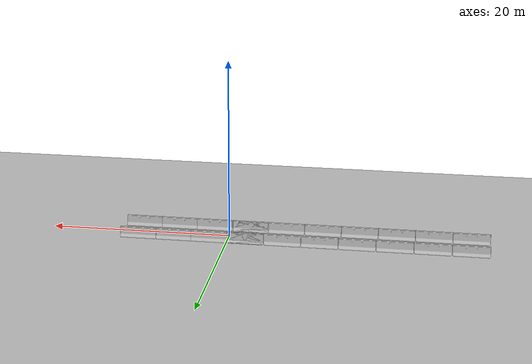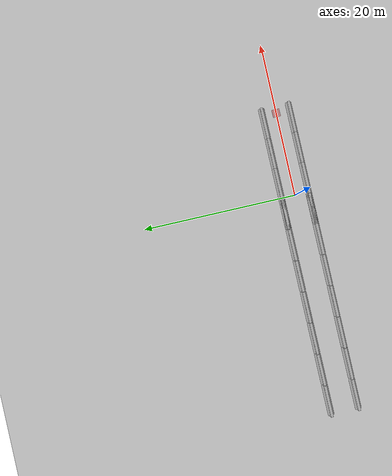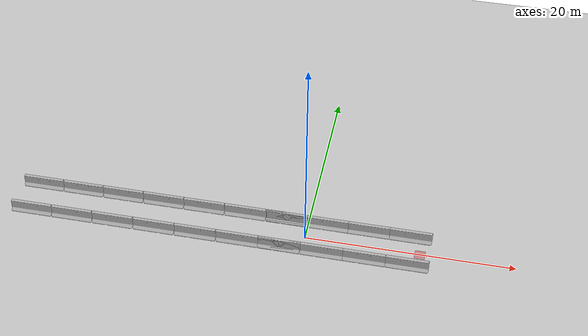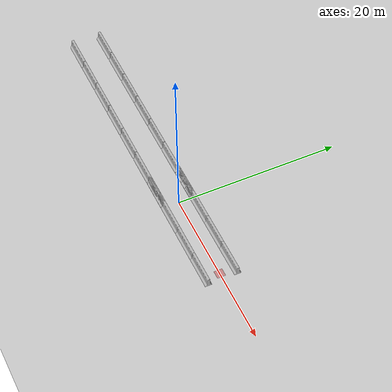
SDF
<sdf version="1.4">
 <world name="default">
  <include><uri>model://sun</uri></include>
  <include><uri>model://ground_plane</uri></include>
  <model name="goal">
   <static>1</static>
   <pose>11 0 0 0 -0 0</pose>
   <link name="link">
    <visual name="visual">
     <geometry><box><size>1 1 0.001</size></box></geometry>
     <transparency>0.6</transparency>
     <material>
      <script><name>Gazebo/Red</name><uri>file://media/materials/scripts/gazebo.material</uri></script>
     </material>
    </visual>
   </link>
  </model>
  <model name="jersey_barrier">
   <static>1</static>
   <link name="link">
    <visual name="visual">
     <geometry>
      <mesh><uri>model://jersey_barrier/meshes/jersey_barrier.dae</uri><scale>1 1 1</scale></mesh>
     </geometry>
    </visual>
    <collision name="upright">
     <pose>0 0 0.5715 0 -0 0</pose>
     <geometry><box><size>4.06542 0.3063 1.143</size></box></geometry>
    </collision>
    <collision name="base">
     <pose>0 0 0.032258 0 -0 0</pose>
     <geometry><box><size>4.06542 0.8107 0.064516</size></box></geometry>
    </collision>
    <collision name="base2">
     <pose>0 0 0.1 0 -0 0</pose>
     <geometry><box><size>4.06542 0.65 0.1</size></box></geometry>
    </collision>
    <collision name="base3">
     <pose>0 0 0.2 0 -0 0</pose>
     <geometry><box><size>4.06542 0.5 0.1</size></box></geometry>
    </collision>
    <collision name="left-angle">
     <pose>0 -0.224 0.2401 0.9 -0 0</pose>
     <geometry><box><size>4.06542 0.5 0.064516</size></box></geometry>
    </collision>
    <collision name="right-angle">
     <pose>0 0.224 0.2401 -0.9 0 0</pose>
     <geometry><box><size>4.06542 0.5 0.064516</size></box></geometry>
    </collision>
   </link>
   <pose>1.9321 -1.8 0 0 -0 0</pose>
  </model>
  <model name="jersey_barrier_0">
   <static>1</static>
   <link name="link">
    <visual name="visual">
     <geometry>
      <mesh><uri>model://jersey_barrier/meshes/jersey_barrier.dae</uri><scale>1 1 1</scale></mesh>
     </geometry>
    </visual>
    <collision name="upright">
     <pose>0 0 0.5715 0 -0 0</pose>
     <geometry><box><size>4.06542 0.3063 1.143</size></box></geometry>
    </collision>
    <collision name="base">
     <pose>0 0 0.032258 0 -0 0</pose>
     <geometry><box><size>4.06542 0.8107 0.064516</size></box></geometry>
    </collision>
    <collision name="base2">
     <pose>0 0 0.1 0 -0 0</pose>
     <geometry><box><size>4.06542 0.65 0.1</size></box></geometry>
    </collision>
    <collision name="base3">
     <pose>0 0 0.2 0 -0 0</pose>
     <geometry><box><size>4.06542 0.5 0.1</size></box></geometry>
    </collision>
    <collision name="left-angle">
     <pose>0 -0.224 0.2401 0.9 -0 0</pose>
     <geometry><box><size>4.06542 0.5 0.064516</size></box></geometry>
    </collision>
    <collision name="right-angle">
     <pose>0 0.224 0.2401 -0.9 0 0</pose>
     <geometry><box><size>4.06542 0.5 0.064516</size></box></geometry>
    </collision>
   </link>
   <pose>-2.1672 -1.8 0 0 -0 0</pose>
  </model>
  <model name="jersey_barrier_1">
   <static>1</static>
   <link name="link">
    <visual name="visual">
     <geometry>
      <mesh><uri>model://jersey_barrier/meshes/jersey_barrier.dae</uri><scale>1 1 1</scale></mesh>
     </geometry>
    </visual>
    <collision name="upright">
     <pose>0 0 0.5715 0 -0 0</pose>
     <geometry><box><size>4.06542 0.3063 1.143</size></box></geometry>
    </collision>
    <collision name="base">
     <pose>0 0 0.032258 0 -0 0</pose>
     <geometry><box><size>4.06542 0.8107 0.064516</size></box></geometry>
    </collision>
    <collision name="base2">
     <pose>0 0 0.1 0 -0 0</pose>
     <geometry><box><size>4.06542 0.65 0.1</size></box></geometry>
    </collision>
    <collision name="base3">
     <pose>0 0 0.2 0 -0 0</pose>
     <geometry><box><size>4.06542 0.5 0.1</size></box></geometry>
    </collision>
    <collision name="left-angle">
     <pose>0 -0.224 0.2401 0.9 -0 0</pose>
     <geometry><box><size>4.06542 0.5 0.064516</size></box></geometry>
    </collision>
    <collision name="right-angle">
     <pose>0 0.224 0.2401 -0.9 0 0</pose>
     <geometry><box><size>4.06542 0.5 0.064516</size></box></geometry>
    </collision>
   </link>
   <pose>5.9507 -1.8 0 0 -0 0</pose>
  </model>
  <model name="jersey_barrier_2">
   <static>1</static>
   <link name="link">
    <visual name="visual">
     <geometry>
      <mesh><uri>model://jersey_barrier/meshes/jersey_barrier.dae</uri><scale>1 1 1</scale></mesh>
     </geometry>
    </visual>
    <collision name="upright">
     <pose>0 0 0.5715 0 -0 0</pose>
     <geometry><box><size>4.06542 0.3063 1.143</size></box></geometry>
    </collision>
    <collision name="base">
     <pose>0 0 0.032258 0 -0 0</pose>
     <geometry><box><size>4.06542 0.8107 0.064516</size></box></geometry>
    </collision>
    <collision name="base2">
     <pose>0 0 0.1 0 -0 0</pose>
     <geometry><box><size>4.06542 0.65 0.1</size></box></geometry>
    </collision>
    <collision name="base3">
     <pose>0 0 0.2 0 -0 0</pose>
     <geometry><box><size>4.06542 0.5 0.1</size></box></geometry>
    </collision>
    <collision name="left-angle">
     <pose>0 -0.224 0.2401 0.9 -0 0</pose>
     <geometry><box><size>4.06542 0.5 0.064516</size></box></geometry>
    </collision>
    <collision name="right-angle">
     <pose>0 0.224 0.2401 -0.9 0 0</pose>
     <geometry><box><size>4.06542 0.5 0.064516</size></box></geometry>
    </collision>
   </link>
   <pose>9.98487 -1.8 0 0 -0 0</pose>
  </model>
  <model name="jersey_barrier_3">
   <static>1</static>
   <link name="link">
    <visual name="visual">
     <geometry>
      <mesh><uri>model://jersey_barrier/meshes/jersey_barrier.dae</uri><scale>1 1 1</scale></mesh>
     </geometry>
    </visual>
    <collision name="upright">
     <pose>0 0 0.5715 0 -0 0</pose>
     <geometry><box><size>4.06542 0.3063 1.143</size></box></geometry>
    </collision>
    <collision name="base">
     <pose>0 0 0.032258 0 -0 0</pose>
     <geometry><box><size>4.06542 0.8107 0.064516</size></box></geometry>
    </collision>
    <collision name="base2">
     <pose>0 0 0.1 0 -0 0</pose>
     <geometry><box><size>4.06542 0.65 0.1</size></box></geometry>
    </collision>
    <collision name="base3">
     <pose>0 0 0.2 0 -0 0</pose>
     <geometry><box><size>4.06542 0.5 0.1</size></box></geometry>
    </collision>
    <collision name="left-angle">
     <pose>0 -0.224 0.2401 0.9 -0 0</pose>
     <geometry><box><size>4.06542 0.5 0.064516</size></box></geometry>
    </collision>
    <collision name="right-angle">
     <pose>0 0.224 0.2401 -0.9 0 0</pose>
     <geometry><box><size>4.06542 0.5 0.064516</size></box></geometry>
    </collision>
   </link>
   <pose>1.95924 1.8 0 0 -0 0</pose>
  </model>
  <model name="jersey_barrier_4">
   <static>1</static>
   <link name="link">
    <visual name="visual">
     <geometry>
      <mesh><uri>model://jersey_barrier/meshes/jersey_barrier.dae</uri><scale>1 1 1</scale></mesh>
     </geometry>
    </visual>
    <collision name="upright">
     <pose>0 0 0.5715 0 -0 0</pose>
     <geometry><box><size>4.06542 0.3063 1.143</size></box></geometry>
    </collision>
    <collision name="base">
     <pose>0 0 0.032258 0 -0 0</pose>
     <geometry><box><size>4.06542 0.8107 0.064516</size></box></geometry>
    </collision>
    <collision name="base2">
     <pose>0 0 0.1 0 -0 0</pose>
     <geometry><box><size>4.06542 0.65 0.1</size></box></geometry>
    </collision>
    <collision name="base3">
     <pose>0 0 0.2 0 -0 0</pose>
     <geometry><box><size>4.06542 0.5 0.1</size></box></geometry>
    </collision>
    <collision name="left-angle">
     <pose>0 -0.224 0.2401 0.9 -0 0</pose>
     <geometry><box><size>4.06542 0.5 0.064516</size></box></geometry>
    </collision>
    <collision name="right-angle">
     <pose>0 0.224 0.2401 -0.9 0 0</pose>
     <geometry><box><size>4.06542 0.5 0.064516</size></box></geometry>
    </collision>
   </link>
   <pose>-2.04077 1.8 0 0 -0 0</pose>
  </model>
  <model name="jersey_barrier_5">
   <static>1</static>
   <link name="link">
    <visual name="visual">
     <geometry>
      <mesh><uri>model://jersey_barrier/meshes/jersey_barrier.dae</uri><scale>1 1 1</scale></mesh>
     </geometry>
    </visual>
    <collision name="upright">
     <pose>0 0 0.5715 0 -0 0</pose>
     <geometry><box><size>4.06542 0.3063 1.143</size></box></geometry>
    </collision>
    <collision name="base">
     <pose>0 0 0.032258 0 -0 0</pose>
     <geometry><box><size>4.06542 0.8107 0.064516</size></box></geometry>
    </collision>
    <collision name="base2">
     <pose>0 0 0.1 0 -0 0</pose>
     <geometry><box><size>4.06542 0.65 0.1</size></box></geometry>
    </collision>
    <collision name="base3">
     <pose>0 0 0.2 0 -0 0</pose>
     <geometry><box><size>4.06542 0.5 0.1</size></box></geometry>
    </collision>
    <collision name="left-angle">
     <pose>0 -0.224 0.2401 0.9 -0 0</pose>
     <geometry><box><size>4.06542 0.5 0.064516</size></box></geometry>
    </collision>
    <collision name="right-angle">
     <pose>0 0.224 0.2401 -0.9 0 0</pose>
     <geometry><box><size>4.06542 0.5 0.064516</size></box></geometry>
    </collision>
   </link>
   <pose>5.89605 1.8 0 0 -0 0</pose>
  </model>
  <model name="jersey_barrier_6">
   <static>1</static>
   <link name="link">
    <visual name="visual">
     <geometry>
      <mesh><uri>model://jersey_barrier/meshes/jersey_barrier.dae</uri><scale>1 1 1</scale></mesh>
     </geometry>
    </visual>
    <collision name="upright">
     <pose>0 0 0.5715 0 -0 0</pose>
     <geometry><box><size>4.06542 0.3063 1.143</size></box></geometry>
    </collision>
    <collision name="base">
     <pose>0 0 0.032258 0 -0 0</pose>
     <geometry><box><size>4.06542 0.8107 0.064516</size></box></geometry>
    </collision>
    <collision name="base2">
     <pose>0 0 0.1 0 -0 0</pose>
     <geometry><box><size>4.06542 0.65 0.1</size></box></geometry>
    </collision>
    <collision name="base3">
     <pose>0 0 0.2 0 -0 0</pose>
     <geometry><box><size>4.06542 0.5 0.1</size></box></geometry>
    </collision>
    <collision name="left-angle">
     <pose>0 -0.224 0.2401 0.9 -0 0</pose>
     <geometry><box><size>4.06542 0.5 0.064516</size></box></geometry>
    </collision>
    <collision name="right-angle">
     <pose>0 0.224 0.2401 -0.9 0 0</pose>
     <geometry><box><size>4.06542 0.5 0.064516</size></box></geometry>
    </collision>
   </link>
   <pose>9.91959 1.8 0 0 -0 0</pose>
  </model>
  <model name="jersey_barrier_7">
   <static>1</static>
   <link name="link">
    <visual name="visual">
     <geometry>
      <mesh><uri>model://jersey_barrier/meshes/jersey_barrier.dae</uri><scale>1 1 1</scale></mesh>
     </geometry>
    </visual>
    <collision name="upright">
     <pose>0 0 0.5715 0 -0 0</pose>
     <geometry><box><size>4.06542 0.3063 1.143</size></box></geometry>
    </collision>
    <collision name="base">
     <pose>0 0 0.032258 0 -0 0</pose>
     <geometry><box><size>4.06542 0.8107 0.064516</size></box></geometry>
    </collision>
    <collision name="base2">
     <pose>0 0 0.1 0 -0 0</pose>
     <geometry><box><size>4.06542 0.65 0.1</size></box></geometry>
    </collision>
    <collision name="base3">
     <pose>0 0 0.2 0 -0 0</pose>
     <geometry><box><size>4.06542 0.5 0.1</size></box></geometry>
    </collision>
    <collision name="left-angle">
     <pose>0 -0.224 0.2401 0.9 -0 0</pose>
     <geometry><box><size>4.06542 0.5 0.064516</size></box></geometry>
    </collision>
    <collision name="right-angle">
     <pose>0 0.224 0.2401 -0.9 0 0</pose>
     <geometry><box><size>4.06542 0.5 0.064516</size></box></geometry>
    </collision>
   </link>
   <pose>-2.1 -1.8 0 0 -0 0</pose>
  </model>
  <model name="jersey_barrier_8">
   <static>1</static>
   <link name="link">
    <visual name="visual">
     <geometry>
      <mesh><uri>model://jersey_barrier/meshes/jersey_barrier.dae</uri><scale>1 1 1</scale></mesh>
     </geometry>
    </visual>
    <collision name="upright">
     <pose>0 0 0.5715 0 -0 0</pose>
     <geometry><box><size>4.06542 0.3063 1.143</size></box></geometry>
    </collision>
    <collision name="base">
     <pose>0 0 0.032258 0 -0 0</pose>
     <geometry><box><size>4.06542 0.8107 0.064516</size></box></geometry>
    </collision>
    <collision name="base2">
     <pose>0 0 0.1 0 -0 0</pose>
     <geometry><box><size>4.06542 0.65 0.1</size></box></geometry>
    </collision>
    <collision name="base3">
     <pose>0 0 0.2 0 -0 0</pose>
     <geometry><box><size>4.06542 0.5 0.1</size></box></geometry>
    </collision>
    <collision name="left-angle">
     <pose>0 -0.224 0.2401 0.9 -0 0</pose>
     <geometry><box><size>4.06542 0.5 0.064516</size></box></geometry>
    </collision>
    <collision name="right-angle">
     <pose>0 0.224 0.2401 -0.9 0 0</pose>
     <geometry><box><size>4.06542 0.5 0.064516</size></box></geometry>
    </collision>
   </link>
   <pose>-6.2 -1.8 0 0 -0 0</pose>
  </model>
  <model name="jersey_barrier_9">
   <static>1</static>
   <link name="link">
    <visual name="visual">
     <geometry>
      <mesh><uri>model://jersey_barrier/meshes/jersey_barrier.dae</uri><scale>1 1 1</scale></mesh>
     </geometry>
    </visual>
    <collision name="upright">
     <pose>0 0 0.5715 0 -0 0</pose>
     <geometry><box><size>4.06542 0.3063 1.143</size></box></geometry>
    </collision>
    <collision name="base">
     <pose>0 0 0.032258 0 -0 0</pose>
     <geometry><box><size>4.06542 0.8107 0.064516</size></box></geometry>
    </collision>
    <collision name="base2">
     <pose>0 0 0.1 0 -0 0</pose>
     <geometry><box><size>4.06542 0.65 0.1</size></box></geometry>
    </collision>
    <collision name="base3">
     <pose>0 0 0.2 0 -0 0</pose>
     <geometry><box><size>4.06542 0.5 0.1</size></box></geometry>
    </collision>
    <collision name="left-angle">
     <pose>0 -0.224 0.2401 0.9 -0 0</pose>
     <geometry><box><size>4.06542 0.5 0.064516</size></box></geometry>
    </collision>
    <collision name="right-angle">
     <pose>0 0.224 0.2401 -0.9 0 0</pose>
     <geometry><box><size>4.06542 0.5 0.064516</size></box></geometry>
    </collision>
   </link>
   <pose>-10.3 -1.8 0 0 -0 0</pose>
  </model>
  <model name="jersey_barrier_10">
   <static>1</static>
   <link name="link">
    <visual name="visual">
     <geometry>
      <mesh><uri>model://jersey_barrier/meshes/jersey_barrier.dae</uri><scale>1 1 1</scale></mesh>
     </geometry>
    </visual>
    <collision name="upright">
     <pose>0 0 0.5715 0 -0 0</pose>
     <geometry><box><size>4.06542 0.3063 1.143</size></box></geometry>
    </collision>
    <collision name="base">
     <pose>0 0 0.032258 0 -0 0</pose>
     <geometry><box><size>4.06542 0.8107 0.064516</size></box></geometry>
    </collision>
    <collision name="base2">
     <pose>0 0 0.1 0 -0 0</pose>
     <geometry><box><size>4.06542 0.65 0.1</size></box></geometry>
    </collision>
    <collision name="base3">
     <pose>0 0 0.2 0 -0 0</pose>
     <geometry><box><size>4.06542 0.5 0.1</size></box></geometry>
    </collision>
    <collision name="left-angle">
     <pose>0 -0.224 0.2401 0.9 -0 0</pose>
     <geometry><box><size>4.06542 0.5 0.064516</size></box></geometry>
    </collision>
    <collision name="right-angle">
     <pose>0 0.224 0.2401 -0.9 0 0</pose>
     <geometry><box><size>4.06542 0.5 0.064516</size></box></geometry>
    </collision>
   </link>
   <pose>-14.4 -1.8 0 0 -0 0</pose>
  </model>
  <model name="jersey_barrier_11">
   <static>1</static>
   <link name="link">
    <visual name="visual">
     <geometry>
      <mesh><uri>model://jersey_barrier/meshes/jersey_barrier.dae</uri><scale>1 1 1</scale></mesh>
     </geometry>
    </visual>
    <collision name="upright">
     <pose>0 0 0.5715 0 -0 0</pose>
     <geometry><box><size>4.06542 0.3063 1.143</size></box></geometry>
    </collision>
    <collision name="base">
     <pose>0 0 0.032258 0 -0 0</pose>
     <geometry><box><size>4.06542 0.8107 0.064516</size></box></geometry>
    </collision>
    <collision name="base2">
     <pose>0 0 0.1 0 -0 0</pose>
     <geometry><box><size>4.06542 0.65 0.1</size></box></geometry>
    </collision>
    <collision name="base3">
     <pose>0 0 0.2 0 -0 0</pose>
     <geometry><box><size>4.06542 0.5 0.1</size></box></geometry>
    </collision>
    <collision name="left-angle">
     <pose>0 -0.224 0.2401 0.9 -0 0</pose>
     <geometry><box><size>4.06542 0.5 0.064516</size></box></geometry>
    </collision>
    <collision name="right-angle">
     <pose>0 0.224 0.2401 -0.9 0 0</pose>
     <geometry><box><size>4.06542 0.5 0.064516</size></box></geometry>
    </collision>
   </link>
   <pose>-18.5 -1.8 0 0 -0 0</pose>
  </model>
  <model name="jersey_barrier_12">
   <static>1</static>
   <link name="link">
    <visual name="visual">
     <geometry>
      <mesh><uri>model://jersey_barrier/meshes/jersey_barrier.dae</uri><scale>1 1 1</scale></mesh>
     </geometry>
    </visual>
    <collision name="upright">
     <pose>0 0 0.5715 0 -0 0</pose>
     <geometry><box><size>4.06542 0.3063 1.143</size></box></geometry>
    </collision>
    <collision name="base">
     <pose>0 0 0.032258 0 -0 0</pose>
     <geometry><box><size>4.06542 0.8107 0.064516</size></box></geometry>
    </collision>
    <collision name="base2">
     <pose>0 0 0.1 0 -0 0</pose>
     <geometry><box><size>4.06542 0.65 0.1</size></box></geometry>
    </collision>
    <collision name="base3">
     <pose>0 0 0.2 0 -0 0</pose>
     <geometry><box><size>4.06542 0.5 0.1</size></box></geometry>
    </collision>
    <collision name="left-angle">
     <pose>0 -0.224 0.2401 0.9 -0 0</pose>
     <geometry><box><size>4.06542 0.5 0.064516</size></box></geometry>
    </collision>
    <collision name="right-angle">
     <pose>0 0.224 0.2401 -0.9 0 0</pose>
     <geometry><box><size>4.06542 0.5 0.064516</size></box></geometry>
    </collision>
   </link>
   <pose>-22.6 -1.8 0 0 -0 0</pose>
  </model>
  <model name="jersey_barrier_13">
   <static>1</static>
   <link name="link">
    <visual name="visual">
     <geometry>
      <mesh><uri>model://jersey_barrier/meshes/jersey_barrier.dae</uri><scale>1 1 1</scale></mesh>
     </geometry>
    </visual>
    <collision name="upright">
     <pose>0 0 0.5715 0 -0 0</pose>
     <geometry><box><size>4.06542 0.3063 1.143</size></box></geometry>
    </collision>
    <collision name="base">
     <pose>0 0 0.032258 0 -0 0</pose>
     <geometry><box><size>4.06542 0.8107 0.064516</size></box></geometry>
    </collision>
    <collision name="base2">
     <pose>0 0 0.1 0 -0 0</pose>
     <geometry><box><size>4.06542 0.65 0.1</size></box></geometry>
    </collision>
    <collision name="base3">
     <pose>0 0 0.2 0 -0 0</pose>
     <geometry><box><size>4.06542 0.5 0.1</size></box></geometry>
    </collision>
    <collision name="left-angle">
     <pose>0 -0.224 0.2401 0.9 -0 0</pose>
     <geometry><box><size>4.06542 0.5 0.064516</size></box></geometry>
    </collision>
    <collision name="right-angle">
     <pose>0 0.224 0.2401 -0.9 0 0</pose>
     <geometry><box><size>4.06542 0.5 0.064516</size></box></geometry>
    </collision>
   </link>
   <pose>-26.7 -1.8 0 0 -0 0</pose>
  </model>
  <model name="jersey_barrier_14">
   <static>1</static>
   <link name="link">
    <visual name="visual">
     <geometry>
      <mesh><uri>model://jersey_barrier/meshes/jersey_barrier.dae</uri><scale>1 1 1</scale></mesh>
     </geometry>
    </visual>
    <collision name="upright">
     <pose>0 0 0.5715 0 -0 0</pose>
     <geometry><box><size>4.06542 0.3063 1.143</size></box></geometry>
    </collision>
    <collision name="base">
     <pose>0 0 0.032258 0 -0 0</pose>
     <geometry><box><size>4.06542 0.8107 0.064516</size></box></geometry>
    </collision>
    <collision name="base2">
     <pose>0 0 0.1 0 -0 0</pose>
     <geometry><box><size>4.06542 0.65 0.1</size></box></geometry>
    </collision>
    <collision name="base3">
     <pose>0 0 0.2 0 -0 0</pose>
     <geometry><box><size>4.06542 0.5 0.1</size></box></geometry>
    </collision>
    <collision name="left-angle">
     <pose>0 -0.224 0.2401 0.9 -0 0</pose>
     <geometry><box><size>4.06542 0.5 0.064516</size></box></geometry>
    </collision>
    <collision name="right-angle">
     <pose>0 0.224 0.2401 -0.9 0 0</pose>
     <geometry><box><size>4.06542 0.5 0.064516</size></box></geometry>
    </collision>
   </link>
   <pose>-2.1 1.8 0 0 -0 0</pose>
  </model>
  <model name="jersey_barrier_15">
   <static>1</static>
   <link name="link">
    <visual name="visual">
     <geometry>
      <mesh><uri>model://jersey_barrier/meshes/jersey_barrier.dae</uri><scale>1 1 1</scale></mesh>
     </geometry>
    </visual>
    <collision name="upright">
     <pose>0 0 0.5715 0 -0 0</pose>
     <geometry><box><size>4.06542 0.3063 1.143</size></box></geometry>
    </collision>
    <collision name="base">
     <pose>0 0 0.032258 0 -0 0</pose>
     <geometry><box><size>4.06542 0.8107 0.064516</size></box></geometry>
    </collision>
    <collision name="base2">
     <pose>0 0 0.1 0 -0 0</pose>
     <geometry><box><size>4.06542 0.65 0.1</size></box></geometry>
    </collision>
    <collision name="base3">
     <pose>0 0 0.2 0 -0 0</pose>
     <geometry><box><size>4.06542 0.5 0.1</size></box></geometry>
    </collision>
    <collision name="left-angle">
     <pose>0 -0.224 0.2401 0.9 -0 0</pose>
     <geometry><box><size>4.06542 0.5 0.064516</size></box></geometry>
    </collision>
    <collision name="right-angle">
     <pose>0 0.224 0.2401 -0.9 0 0</pose>
     <geometry><box><size>4.06542 0.5 0.064516</size></box></geometry>
    </collision>
   </link>
   <pose>-6.2 1.8 0 0 -0 0</pose>
  </model>
  <model name="jersey_barrier_16">
   <static>1</static>
   <link name="link">
    <visual name="visual">
     <geometry>
      <mesh><uri>model://jersey_barrier/meshes/jersey_barrier.dae</uri><scale>1 1 1</scale></mesh>
     </geometry>
    </visual>
    <collision name="upright">
     <pose>0 0 0.5715 0 -0 0</pose>
     <geometry><box><size>4.06542 0.3063 1.143</size></box></geometry>
    </collision>
    <collision name="base">
     <pose>0 0 0.032258 0 -0 0</pose>
     <geometry><box><size>4.06542 0.8107 0.064516</size></box></geometry>
    </collision>
    <collision name="base2">
     <pose>0 0 0.1 0 -0 0</pose>
     <geometry><box><size>4.06542 0.65 0.1</size></box></geometry>
    </collision>
    <collision name="base3">
     <pose>0 0 0.2 0 -0 0</pose>
     <geometry><box><size>4.06542 0.5 0.1</size></box></geometry>
    </collision>
    <collision name="left-angle">
     <pose>0 -0.224 0.2401 0.9 -0 0</pose>
     <geometry><box><size>4.06542 0.5 0.064516</size></box></geometry>
    </collision>
    <collision name="right-angle">
     <pose>0 0.224 0.2401 -0.9 0 0</pose>
     <geometry><box><size>4.06542 0.5 0.064516</size></box></geometry>
    </collision>
   </link>
   <pose>-10.3 1.8 0 0 -0 0</pose>
  </model>
  <model name="jersey_barrier_17">
   <static>1</static>
   <link name="link">
    <visual name="visual">
     <geometry>
      <mesh><uri>model://jersey_barrier/meshes/jersey_barrier.dae</uri><scale>1 1 1</scale></mesh>
     </geometry>
    </visual>
    <collision name="upright">
     <pose>0 0 0.5715 0 -0 0</pose>
     <geometry><box><size>4.06542 0.3063 1.143</size></box></geometry>
    </collision>
    <collision name="base">
     <pose>0 0 0.032258 0 -0 0</pose>
     <geometry><box><size>4.06542 0.8107 0.064516</size></box></geometry>
    </collision>
    <collision name="base2">
     <pose>0 0 0.1 0 -0 0</pose>
     <geometry><box><size>4.06542 0.65 0.1</size></box></geometry>
    </collision>
    <collision name="base3">
     <pose>0 0 0.2 0 -0 0</pose>
     <geometry><box><size>4.06542 0.5 0.1</size></box></geometry>
    </collision>
    <collision name="left-angle">
     <pose>0 -0.224 0.2401 0.9 -0 0</pose>
     <geometry><box><size>4.06542 0.5 0.064516</size></box></geometry>
    </collision>
    <collision name="right-angle">
     <pose>0 0.224 0.2401 -0.9 0 0</pose>
     <geometry><box><size>4.06542 0.5 0.064516</size></box></geometry>
    </collision>
   </link>
   <pose>-14.4 1.8 0 0 -0 0</pose>
  </model>
  <model name="jersey_barrier_18">
   <static>1</static>
   <link name="link">
    <visual name="visual">
     <geometry>
      <mesh><uri>model://jersey_barrier/meshes/jersey_barrier.dae</uri><scale>1 1 1</scale></mesh>
     </geometry>
    </visual>
    <collision name="upright">
     <pose>0 0 0.5715 0 -0 0</pose>
     <geometry><box><size>4.06542 0.3063 1.143</size></box></geometry>
    </collision>
    <collision name="base">
     <pose>0 0 0.032258 0 -0 0</pose>
     <geometry><box><size>4.06542 0.8107 0.064516</size></box></geometry>
    </collision>
    <collision name="base2">
     <pose>0 0 0.1 0 -0 0</pose>
     <geometry><box><size>4.06542 0.65 0.1</size></box></geometry>
    </collision>
    <collision name="base3">
     <pose>0 0 0.2 0 -0 0</pose>
     <geometry><box><size>4.06542 0.5 0.1</size></box></geometry>
    </collision>
    <collision name="left-angle">
     <pose>0 -0.224 0.2401 0.9 -0 0</pose>
     <geometry><box><size>4.06542 0.5 0.064516</size></box></geometry>
    </collision>
    <collision name="right-angle">
     <pose>0 0.224 0.2401 -0.9 0 0</pose>
     <geometry><box><size>4.06542 0.5 0.064516</size></box></geometry>
    </collision>
   </link>
   <pose>-18.5 1.8 0 0 -0 0</pose>
  </model>
  <model name="jersey_barrier_19">
   <static>1</static>
   <link name="link">
    <visual name="visual">
     <geometry>
      <mesh><uri>model://jersey_barrier/meshes/jersey_barrier.dae</uri><scale>1 1 1</scale></mesh>
     </geometry>
    </visual>
    <collision name="upright">
     <pose>0 0 0.5715 0 -0 0</pose>
     <geometry><box><size>4.06542 0.3063 1.143</size></box></geometry>
    </collision>
    <collision name="base">
     <pose>0 0 0.032258 0 -0 0</pose>
     <geometry><box><size>4.06542 0.8107 0.064516</size></box></geometry>
    </collision>
    <collision name="base2">
     <pose>0 0 0.1 0 -0 0</pose>
     <geometry><box><size>4.06542 0.65 0.1</size></box></geometry>
    </collision>
    <collision name="base3">
     <pose>0 0 0.2 0 -0 0</pose>
     <geometry><box><size>4.06542 0.5 0.1</size></box></geometry>
    </collision>
    <collision name="left-angle">
     <pose>0 -0.224 0.2401 0.9 -0 0</pose>
     <geometry><box><size>4.06542 0.5 0.064516</size></box></geometry>
    </collision>
    <collision name="right-angle">
     <pose>0 0.224 0.2401 -0.9 0 0</pose>
     <geometry><box><size>4.06542 0.5 0.064516</size></box></geometry>
    </collision>
   </link>
   <pose>-22.6 1.8 0 0 -0 0</pose>
  </model>
  <model name="jersey_barrier_20">
   <static>1</static>
   <link name="link">
    <visual name="visual">
     <geometry>
      <mesh><uri>model://jersey_barrier/meshes/jersey_barrier.dae</uri><scale>1 1 1</scale></mesh>
     </geometry>
    </visual>
    <collision name="upright">
     <pose>0 0 0.5715 0 -0 0</pose>
     <geometry><box><size>4.06542 0.3063 1.143</size></box></geometry>
    </collision>
    <collision name="base">
     <pose>0 0 0.032258 0 -0 0</pose>
     <geometry><box><size>4.06542 0.8107 0.064516</size></box></geometry>
    </collision>
    <collision name="base2">
     <pose>0 0 0.1 0 -0 0</pose>
     <geometry><box><size>4.06542 0.65 0.1</size></box></geometry>
    </collision>
    <collision name="base3">
     <pose>0 0 0.2 0 -0 0</pose>
     <geometry><box><size>4.06542 0.5 0.1</size></box></geometry>
    </collision>
    <collision name="left-angle">
     <pose>0 -0.224 0.2401 0.9 -0 0</pose>
     <geometry><box><size>4.06542 0.5 0.064516</size></box></geometry>
    </collision>
    <collision name="right-angle">
     <pose>0 0.224 0.2401 -0.9 0 0</pose>
     <geometry><box><size>4.06542 0.5 0.064516</size></box></geometry>
    </collision>
   </link>
   <pose>-26.7 1.8 0 0 -0 0</pose>
  </model>
 </world>
</sdf>
